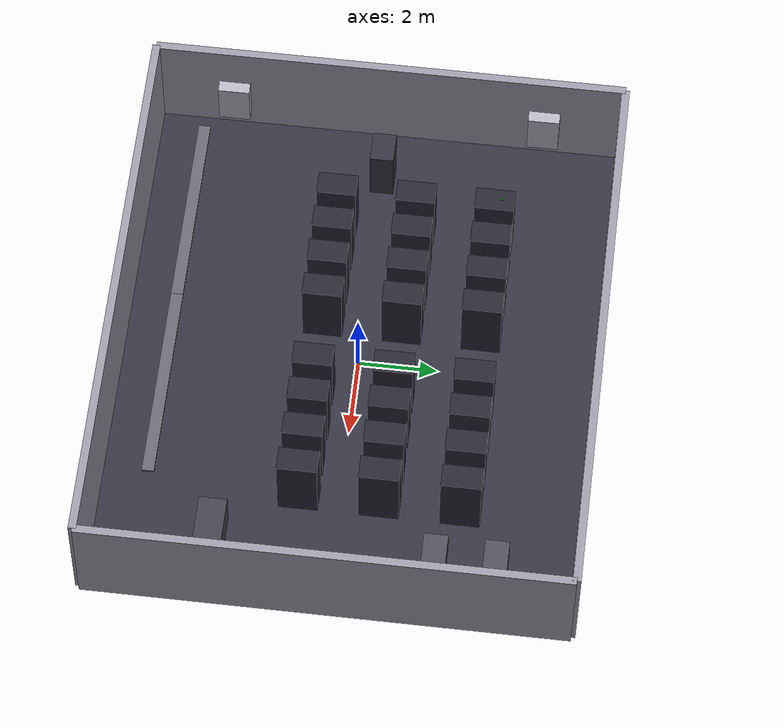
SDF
<?xml version="1.0" ?>
<sdf version="1.6">
  <world name="server_room">
    <!-- Physics settings -->
    <physics type="ode">
      <max_step_size>0.001</max_step_size>
      <real_time_factor>1.0</real_time_factor>
      <real_time_update_rate>1000</real_time_update_rate>
    </physics>

    <!-- Scene -->
    <scene>
      <ambient>0.3 0.3 0.35 1</ambient>
      <background>0.1 0.1 0.15 1</background>
      <shadows>true</shadows>
    </scene>

    <!-- Lighting -->
    <light type="directional" name="sun">
      <cast_shadows>true</cast_shadows>
      <pose>0 0 10 0 0 0</pose>
      <diffuse>0.6 0.6 0.6 1</diffuse>
      <specular>0.2 0.2 0.2 1</specular>
      <direction>-0.5 1 -0.5</direction>
    </light>

    <!-- Ceiling lights for server room -->
    <light type="point" name="ceiling_light_1">
      <pose>-3 0 2.9 0 0 0</pose>
      <diffuse>1 1 1 1</diffuse>
      <attenuation>
        <range>12</range>
        <constant>0.6</constant>
        <linear>0.05</linear>
      </attenuation>
    </light>

    <light type="point" name="ceiling_light_2">
      <pose>3 0 2.9 0 0 0</pose>
      <diffuse>1 1 1 1</diffuse>
      <attenuation>
        <range>12</range>
        <constant>0.6</constant>
        <linear>0.05</linear>
      </attenuation>
    </light>

    <light type="point" name="ceiling_light_3">
      <pose>0 -4 2.9 0 0 0</pose>
      <diffuse>1 1 1 1</diffuse>
      <attenuation>
        <range>12</range>
        <constant>0.6</constant>
        <linear>0.05</linear>
      </attenuation>
    </light>

    <light type="point" name="ceiling_light_4">
      <pose>0 4 2.9 0 0 0</pose>
      <diffuse>1 1 1 1</diffuse>
      <attenuation>
        <range>12</range>
        <constant>0.6</constant>
        <linear>0.05</linear>
      </attenuation>
    </light>

    <!-- ==================== FLOOR ==================== -->
    <model name="floor">
      <static>true</static>
      <link name="floor_link">
        <pose>0 0 0 0 0 0</pose>
        <collision name="floor_collision">
          <geometry>
            <box>
              <size>14 12 0.1</size>
            </box>
          </geometry>
        </collision>
        <visual name="floor_visual">
          <geometry>
            <box>
              <size>14 12 0.1</size>
            </box>
          </geometry>
          <material>
            <ambient>0.2 0.2 0.25 1</ambient>
            <diffuse>0.2 0.2 0.25 1</diffuse>
          </material>
        </visual>
      </link>
    </model>

    <!-- ==================== CEILING ==================== -->

    <!-- ==================== WALLS ==================== -->
    <!-- North wall -->
    <model name="wall_north">
      <static>true</static>
      <link name="wall_link">
        <pose>0 6 1.5 0 0 0</pose>
        <collision name="wall_collision">
          <geometry>
            <box>
              <size>14 0.2 3</size>
            </box>
          </geometry>
        </collision>
        <visual name="wall_visual">
          <geometry>
            <box>
              <size>14 0.2 3</size>
            </box>
          </geometry>
          <material>
            <ambient>0.6 0.6 0.65 1</ambient>
            <diffuse>0.6 0.6 0.65 1</diffuse>
          </material>
        </visual>
      </link>
    </model>

    <!-- South wall -->
    <model name="wall_south">
      <static>true</static>
      <link name="wall_link">
        <pose>0 -6 1.5 0 0 0</pose>
        <collision name="wall_collision">
          <geometry>
            <box>
              <size>14 0.2 3</size>
            </box>
          </geometry>
        </collision>
        <visual name="wall_visual">
          <geometry>
            <box>
              <size>14 0.2 3</size>
            </box>
          </geometry>
          <material>
            <ambient>0.6 0.6 0.65 1</ambient>
            <diffuse>0.6 0.6 0.65 1</diffuse>
          </material>
        </visual>
      </link>
    </model>

    <!-- West wall -->
    <model name="wall_west">
      <static>true</static>
      <link name="wall_link">
        <pose>-7 0 1.5 0 0 0</pose>
        <collision name="wall_collision">
          <geometry>
            <box>
              <size>0.2 12 3</size>
            </box>
          </geometry>
        </collision>
        <visual name="wall_visual">
          <geometry>
            <box>
              <size>0.2 12 3</size>
            </box>
          </geometry>
          <material>
            <ambient>0.6 0.6 0.65 1</ambient>
            <diffuse>0.6 0.6 0.65 1</diffuse>
          </material>
        </visual>
      </link>
    </model>

    <!-- East wall -->
    <model name="wall_east">
      <static>true</static>
      <link name="wall_link">
        <pose>7 0 1.5 0 0 0</pose>
        <collision name="wall_collision">
          <geometry>
            <box>
              <size>0.2 12 3</size>
            </box>
          </geometry>
        </collision>
        <visual name="wall_visual">
          <geometry>
            <box>
              <size>0.2 12 3</size>
            </box>
          </geometry>
          <material>
            <ambient>0.6 0.6 0.65 1</ambient>
            <diffuse>0.6 0.6 0.65 1</diffuse>
          </material>
        </visual>
      </link>
    </model>

    <!-- ==================== SERVER CABINETS (机柜) ==================== -->
    <!-- Row 1 - 4 cabinets -->
    <!-- Server Cabinet 1 -->
    <model name="server_cabinet_1">
      <static>true</static>
      <pose>-4 3 1.0 0 0 0</pose>
      <link name="frame">
        <collision name="cabinet_collision">
          <geometry>
            <box>
              <size>0.6 1.0 2.0</size>
            </box>
          </geometry>
        </collision>
        <visual name="cabinet_visual">
          <geometry>
            <box>
              <size>0.6 1.0 2.0</size>
            </box>
          </geometry>
          <material>
            <ambient>0.15 0.15 0.2 1</ambient>
            <diffuse>0.15 0.15 0.2 1</diffuse>
          </material>
        </visual>
      </link>
      <!-- LED status lights -->
      <link name="led_panel_1">
        <pose>0.31 0.2 1.5 0 0 0</pose>
        <visual name="led_visual">
          <geometry>
            <box>
              <size>0.02 0.1 0.02</size>
            </box>
          </geometry>
          <material>
            <ambient>0 1 0 1</ambient>
            <diffuse>0 1 0 1</diffuse>
          </material>
        </visual>
      </link>
    </model>

    <!-- Server Cabinet 2 -->
    <model name="server_cabinet_2">
      <static>true</static>
      <pose>-3 3 1.0 0 0 0</pose>
      <link name="frame">
        <collision name="cabinet_collision">
          <geometry>
            <box>
              <size>0.6 1.0 2.0</size>
            </box>
          </geometry>
        </collision>
        <visual name="cabinet_visual">
          <geometry>
            <box>
              <size>0.6 1.0 2.0</size>
            </box>
          </geometry>
          <material>
            <ambient>0.15 0.15 0.2 1</ambient>
            <diffuse>0.15 0.15 0.2 1</diffuse>
          </material>
        </visual>
      </link>
    </model>

    <!-- Server Cabinet 3 -->
    <model name="server_cabinet_3">
      <static>true</static>
      <pose>-2 3 1.0 0 0 0</pose>
      <link name="frame">
        <collision name="cabinet_collision">
          <geometry>
            <box>
              <size>0.6 1.0 2.0</size>
            </box>
          </geometry>
        </collision>
        <visual name="cabinet_visual">
          <geometry>
            <box>
              <size>0.6 1.0 2.0</size>
            </box>
          </geometry>
          <material>
            <ambient>0.15 0.15 0.2 1</ambient>
            <diffuse>0.15 0.15 0.2 1</diffuse>
          </material>
        </visual>
      </link>
    </model>

    <!-- Server Cabinet 4 -->
    <model name="server_cabinet_4">
      <static>true</static>
      <pose>-1 3 1.0 0 0 0</pose>
      <link name="frame">
        <collision name="cabinet_collision">
          <geometry>
            <box>
              <size>0.6 1.0 2.0</size>
            </box>
          </geometry>
        </collision>
        <visual name="cabinet_visual">
          <geometry>
            <box>
              <size>0.6 1.0 2.0</size>
            </box>
          </geometry>
          <material>
            <ambient>0.15 0.15 0.2 1</ambient>
            <diffuse>0.15 0.15 0.2 1</diffuse>
          </material>
        </visual>
      </link>
    </model>

    <!-- Row 2 - 4 cabinets -->
    <!-- Server Cabinet 5 -->
    <model name="server_cabinet_5">
      <static>true</static>
      <pose>-4 1 1.0 0 0 0</pose>
      <link name="frame">
        <collision name="cabinet_collision">
          <geometry>
            <box>
              <size>0.6 1.0 2.0</size>
            </box>
          </geometry>
        </collision>
        <visual name="cabinet_visual">
          <geometry>
            <box>
              <size>0.6 1.0 2.0</size>
            </box>
          </geometry>
          <material>
            <ambient>0.15 0.15 0.2 1</ambient>
            <diffuse>0.15 0.15 0.2 1</diffuse>
          </material>
        </visual>
      </link>
    </model>

    <!-- Server Cabinet 6 -->
    <model name="server_cabinet_6">
      <static>true</static>
      <pose>-3 1 1.0 0 0 0</pose>
      <link name="frame">
        <collision name="cabinet_collision">
          <geometry>
            <box>
              <size>0.6 1.0 2.0</size>
            </box>
          </geometry>
        </collision>
        <visual name="cabinet_visual">
          <geometry>
            <box>
              <size>0.6 1.0 2.0</size>
            </box>
          </geometry>
          <material>
            <ambient>0.15 0.15 0.2 1</ambient>
            <diffuse>0.15 0.15 0.2 1</diffuse>
          </material>
        </visual>
      </link>
    </model>

    <!-- Server Cabinet 7 -->
    <model name="server_cabinet_7">
      <static>true</static>
      <pose>-2 1 1.0 0 0 0</pose>
      <link name="frame">
        <collision name="cabinet_collision">
          <geometry>
            <box>
              <size>0.6 1.0 2.0</size>
            </box>
          </geometry>
        </collision>
        <visual name="cabinet_visual">
          <geometry>
            <box>
              <size>0.6 1.0 2.0</size>
            </box>
          </geometry>
          <material>
            <ambient>0.15 0.15 0.2 1</ambient>
            <diffuse>0.15 0.15 0.2 1</diffuse>
          </material>
        </visual>
      </link>
    </model>

    <!-- Server Cabinet 8 -->
    <model name="server_cabinet_8">
      <static>true</static>
      <pose>-1 1 1.0 0 0 0</pose>
      <link name="frame">
        <collision name="cabinet_collision">
          <geometry>
            <box>
              <size>0.6 1.0 2.0</size>
            </box>
          </geometry>
        </collision>
        <visual name="cabinet_visual">
          <geometry>
            <box>
              <size>0.6 1.0 2.0</size>
            </box>
          </geometry>
          <material>
            <ambient>0.15 0.15 0.2 1</ambient>
            <diffuse>0.15 0.15 0.2 1</diffuse>
          </material>
        </visual>
      </link>
    </model>

    <!-- Row 3 - 4 cabinets -->
    <!-- Server Cabinet 9 -->
    <model name="server_cabinet_9">
      <static>true</static>
      <pose>-4 -1 1.0 0 0 0</pose>
      <link name="frame">
        <collision name="cabinet_collision">
          <geometry>
            <box>
              <size>0.6 1.0 2.0</size>
            </box>
          </geometry>
        </collision>
        <visual name="cabinet_visual">
          <geometry>
            <box>
              <size>0.6 1.0 2.0</size>
            </box>
          </geometry>
          <material>
            <ambient>0.15 0.15 0.2 1</ambient>
            <diffuse>0.15 0.15 0.2 1</diffuse>
          </material>
        </visual>
      </link>
    </model>

    <!-- Server Cabinet 10 -->
    <model name="server_cabinet_10">
      <static>true</static>
      <pose>-3 -1 1.0 0 0 0</pose>
      <link name="frame">
        <collision name="cabinet_collision">
          <geometry>
            <box>
              <size>0.6 1.0 2.0</size>
            </box>
          </geometry>
        </collision>
        <visual name="cabinet_visual">
          <geometry>
            <box>
              <size>0.6 1.0 2.0</size>
            </box>
          </geometry>
          <material>
            <ambient>0.15 0.15 0.2 1</ambient>
            <diffuse>0.15 0.15 0.2 1</diffuse>
          </material>
        </visual>
      </link>
    </model>

    <!-- Server Cabinet 11 -->
    <model name="server_cabinet_11">
      <static>true</static>
      <pose>-2 -1 1.0 0 0 0</pose>
      <link name="frame">
        <collision name="cabinet_collision">
          <geometry>
            <box>
              <size>0.6 1.0 2.0</size>
            </box>
          </geometry>
        </collision>
        <visual name="cabinet_visual">
          <geometry>
            <box>
              <size>0.6 1.0 2.0</size>
            </box>
          </geometry>
          <material>
            <ambient>0.15 0.15 0.2 1</ambient>
            <diffuse>0.15 0.15 0.2 1</diffuse>
          </material>
        </visual>
      </link>
    </model>

    <!-- Server Cabinet 12 -->
    <model name="server_cabinet_12">
      <static>true</static>
      <pose>-1 -1 1.0 0 0 0</pose>
      <link name="frame">
        <collision name="cabinet_collision">
          <geometry>
            <box>
              <size>0.6 1.0 2.0</size>
            </box>
          </geometry>
        </collision>
        <visual name="cabinet_visual">
          <geometry>
            <box>
              <size>0.6 1.0 2.0</size>
            </box>
          </geometry>
          <material>
            <ambient>0.15 0.15 0.2 1</ambient>
            <diffuse>0.15 0.15 0.2 1</diffuse>
          </material>
        </visual>
      </link>
    </model>

    <!-- Row 4 - 4 cabinets -->
    <!-- Server Cabinet 13 -->
    <model name="server_cabinet_13">
      <static>true</static>
      <pose>1 3 1.0 0 0 0</pose>
      <link name="frame">
        <collision name="cabinet_collision">
          <geometry>
            <box>
              <size>0.6 1.0 2.0</size>
            </box>
          </geometry>
        </collision>
        <visual name="cabinet_visual">
          <geometry>
            <box>
              <size>0.6 1.0 2.0</size>
            </box>
          </geometry>
          <material>
            <ambient>0.15 0.15 0.2 1</ambient>
            <diffuse>0.15 0.15 0.2 1</diffuse>
          </material>
        </visual>
      </link>
    </model>

    <!-- Server Cabinet 14 -->
    <model name="server_cabinet_14">
      <static>true</static>
      <pose>2 3 1.0 0 0 0</pose>
      <link name="frame">
        <collision name="cabinet_collision">
          <geometry>
            <box>
              <size>0.6 1.0 2.0</size>
            </box>
          </geometry>
        </collision>
        <visual name="cabinet_visual">
          <geometry>
            <box>
              <size>0.6 1.0 2.0</size>
            </box>
          </geometry>
          <material>
            <ambient>0.15 0.15 0.2 1</ambient>
            <diffuse>0.15 0.15 0.2 1</diffuse>
          </material>
        </visual>
      </link>
    </model>

    <!-- Server Cabinet 15 -->
    <model name="server_cabinet_15">
      <static>true</static>
      <pose>3 3 1.0 0 0 0</pose>
      <link name="frame">
        <collision name="cabinet_collision">
          <geometry>
            <box>
              <size>0.6 1.0 2.0</size>
            </box>
          </geometry>
        </collision>
        <visual name="cabinet_visual">
          <geometry>
            <box>
              <size>0.6 1.0 2.0</size>
            </box>
          </geometry>
          <material>
            <ambient>0.15 0.15 0.2 1</ambient>
            <diffuse>0.15 0.15 0.2 1</diffuse>
          </material>
        </visual>
      </link>
    </model>

    <!-- Server Cabinet 16 -->
    <model name="server_cabinet_16">
      <static>true</static>
      <pose>4 3 1.0 0 0 0</pose>
      <link name="frame">
        <collision name="cabinet_collision">
          <geometry>
            <box>
              <size>0.6 1.0 2.0</size>
            </box>
          </geometry>
        </collision>
        <visual name="cabinet_visual">
          <geometry>
            <box>
              <size>0.6 1.0 2.0</size>
            </box>
          </geometry>
          <material>
            <ambient>0.15 0.15 0.2 1</ambient>
            <diffuse>0.15 0.15 0.2 1</diffuse>
          </material>
        </visual>
      </link>
    </model>

    <!-- Row 5 - 4 cabinets -->
    <!-- Server Cabinet 17 -->
    <model name="server_cabinet_17">
      <static>true</static>
      <pose>1 1 1.0 0 0 0</pose>
      <link name="frame">
        <collision name="cabinet_collision">
          <geometry>
            <box>
              <size>0.6 1.0 2.0</size>
            </box>
          </geometry>
        </collision>
        <visual name="cabinet_visual">
          <geometry>
            <box>
              <size>0.6 1.0 2.0</size>
            </box>
          </geometry>
          <material>
            <ambient>0.15 0.15 0.2 1</ambient>
            <diffuse>0.15 0.15 0.2 1</diffuse>
          </material>
        </visual>
      </link>
    </model>

    <!-- Server Cabinet 18 -->
    <model name="server_cabinet_18">
      <static>true</static>
      <pose>2 1 1.0 0 0 0</pose>
      <link name="frame">
        <collision name="cabinet_collision">
          <geometry>
            <box>
              <size>0.6 1.0 2.0</size>
            </box>
          </geometry>
        </collision>
        <visual name="cabinet_visual">
          <geometry>
            <box>
              <size>0.6 1.0 2.0</size>
            </box>
          </geometry>
          <material>
            <ambient>0.15 0.15 0.2 1</ambient>
            <diffuse>0.15 0.15 0.2 1</diffuse>
          </material>
        </visual>
      </link>
    </model>

    <!-- Server Cabinet 19 -->
    <model name="server_cabinet_19">
      <static>true</static>
      <pose>3 1 1.0 0 0 0</pose>
      <link name="frame">
        <collision name="cabinet_collision">
          <geometry>
            <box>
              <size>0.6 1.0 2.0</size>
            </box>
          </geometry>
        </collision>
        <visual name="cabinet_visual">
          <geometry>
            <box>
              <size>0.6 1.0 2.0</size>
            </box>
          </geometry>
          <material>
            <ambient>0.15 0.15 0.2 1</ambient>
            <diffuse>0.15 0.15 0.2 1</diffuse>
          </material>
        </visual>
      </link>
    </model>

    <!-- Server Cabinet 20 -->
    <model name="server_cabinet_20">
      <static>true</static>
      <pose>4 1 1.0 0 0 0</pose>
      <link name="frame">
        <collision name="cabinet_collision">
          <geometry>
            <box>
              <size>0.6 1.0 2.0</size>
            </box>
          </geometry>
        </collision>
        <visual name="cabinet_visual">
          <geometry>
            <box>
              <size>0.6 1.0 2.0</size>
            </box>
          </geometry>
          <material>
            <ambient>0.15 0.15 0.2 1</ambient>
            <diffuse>0.15 0.15 0.2 1</diffuse>
          </material>
        </visual>
      </link>
    </model>

    <!-- Row 6 - 4 cabinets -->
    <!-- Server Cabinet 21 -->
    <model name="server_cabinet_21">
      <static>true</static>
      <pose>1 -1 1.0 0 0 0</pose>
      <link name="frame">
        <collision name="cabinet_collision">
          <geometry>
            <box>
              <size>0.6 1.0 2.0</size>
            </box>
          </geometry>
        </collision>
        <visual name="cabinet_visual">
          <geometry>
            <box>
              <size>0.6 1.0 2.0</size>
            </box>
          </geometry>
          <material>
            <ambient>0.15 0.15 0.2 1</ambient>
            <diffuse>0.15 0.15 0.2 1</diffuse>
          </material>
        </visual>
      </link>
    </model>

    <!-- Server Cabinet 22 -->
    <model name="server_cabinet_22">
      <static>true</static>
      <pose>2 -1 1.0 0 0 0</pose>
      <link name="frame">
        <collision name="cabinet_collision">
          <geometry>
            <box>
              <size>0.6 1.0 2.0</size>
            </box>
          </geometry>
        </collision>
        <visual name="cabinet_visual">
          <geometry>
            <box>
              <size>0.6 1.0 2.0</size>
            </box>
          </geometry>
          <material>
            <ambient>0.15 0.15 0.2 1</ambient>
            <diffuse>0.15 0.15 0.2 1</diffuse>
          </material>
        </visual>
      </link>
    </model>

    <!-- Server Cabinet 23 -->
    <model name="server_cabinet_23">
      <static>true</static>
      <pose>3 -1 1.0 0 0 0</pose>
      <link name="frame">
        <collision name="cabinet_collision">
          <geometry>
            <box>
              <size>0.6 1.0 2.0</size>
            </box>
          </geometry>
        </collision>
        <visual name="cabinet_visual">
          <geometry>
            <box>
              <size>0.6 1.0 2.0</size>
            </box>
          </geometry>
          <material>
            <ambient>0.15 0.15 0.2 1</ambient>
            <diffuse>0.15 0.15 0.2 1</diffuse>
          </material>
        </visual>
      </link>
    </model>

    <!-- Server Cabinet 24 -->
    <model name="server_cabinet_24">
      <static>true</static>
      <pose>4 -1 1.0 0 0 0</pose>
      <link name="frame">
        <collision name="cabinet_collision">
          <geometry>
            <box>
              <size>0.6 1.0 2.0</size>
            </box>
          </geometry>
        </collision>
        <visual name="cabinet_visual">
          <geometry>
            <box>
              <size>0.6 1.0 2.0</size>
            </box>
          </geometry>
          <material>
            <ambient>0.15 0.15 0.2 1</ambient>
            <diffuse>0.15 0.15 0.2 1</diffuse>
          </material>
        </visual>
      </link>
    </model>

    <!-- ==================== SERVER ROOM EQUIPMENT ==================== -->
    <!-- Network Rack / Patch Panel -->
    <model name="network_rack">
      <static>true</static>
      <pose>-5.5 0 0.8 0 0 0</pose>
      <link name="frame">
        <collision name="rack_collision">
          <geometry>
            <box>
              <size>0.8 0.6 1.6</size>
            </box>
          </geometry>
        </collision>
        <visual name="rack_visual">
          <geometry>
            <box>
              <size>0.8 0.6 1.6</size>
            </box>
          </geometry>
          <material>
            <ambient>0.2 0.2 0.25 1</ambient>
            <diffuse>0.2 0.2 0.25 1</diffuse>
          </material>
        </visual>
      </link>
    </model>

    <!-- UPS (Uninterruptible Power Supply) -->
    <model name="ups_1">
      <static>true</static>
      <pose>5.5 4 0.4 0 0 0</pose>
      <link name="frame">
        <collision name="ups_collision">
          <geometry>
            <box>
              <size>1.0 0.6 0.8</size>
            </box>
          </geometry>
        </collision>
        <visual name="ups_visual">
          <geometry>
            <box>
              <size>1.0 0.6 0.8</size>
            </box>
          </geometry>
          <material>
            <ambient>0.3 0.3 0.35 1</ambient>
            <diffuse>0.3 0.3 0.35 1</diffuse>
          </material>
        </visual>
      </link>
    </model>

    <model name="ups_2">
      <static>true</static>
      <pose>5.5 2.5 0.4 0 0 0</pose>
      <link name="frame">
        <collision name="ups_collision">
          <geometry>
            <box>
              <size>1.0 0.6 0.8</size>
            </box>
          </geometry>
        </collision>
        <visual name="ups_visual">
          <geometry>
            <box>
              <size>1.0 0.6 0.8</size>
            </box>
          </geometry>
          <material>
            <ambient>0.3 0.3 0.35 1</ambient>
            <diffuse>0.3 0.3 0.35 1</diffuse>
          </material>
        </visual>
      </link>
    </model>

    <!-- Server Room Desk / Console -->
    <model name="console_desk">
      <static>true</static>
      <pose>5.5 -3 0.5 0 0 0</pose>
      <link name="frame">
        <collision name="desk_collision">
          <geometry>
            <box>
              <size>1.5 0.7 1.0</size>
            </box>
          </geometry>
        </collision>
        <visual name="desk_visual">
          <geometry>
            <box>
              <size>1.5 0.7 1.0</size>
            </box>
          </geometry>
          <material>
            <ambient>0.25 0.25 0.3 1</ambient>
            <diffuse>0.25 0.25 0.3 1</diffuse>
          </material>
        </visual>
      </link>
    </model>

    <!-- Air Conditioning Unit -->
    <model name="ac_unit_1">
      <static>true</static>
      <pose>-6.8 4 1.2 0 0 0</pose>
      <link name="frame">
        <collision name="ac_collision">
          <geometry>
            <box>
              <size>0.4 0.8 1.2</size>
            </box>
          </geometry>
        </collision>
        <visual name="ac_visual">
          <geometry>
            <box>
              <size>0.4 0.8 1.2</size>
            </box>
          </geometry>
          <material>
            <ambient>0.7 0.7 0.75 1</ambient>
            <diffuse>0.7 0.7 0.75 1</diffuse>
          </material>
        </visual>
      </link>
    </model>

    <model name="ac_unit_2">
      <static>true</static>
      <pose>-6.8 -4 1.2 0 0 0</pose>
      <link name="frame">
        <collision name="ac_collision">
          <geometry>
            <box>
              <size>0.4 0.8 1.2</size>
            </box>
          </geometry>
        </collision>
        <visual name="ac_visual">
          <geometry>
            <box>
              <size>0.4 0.8 1.2</size>
            </box>
          </geometry>
          <material>
            <ambient>0.7 0.7 0.75 1</ambient>
            <diffuse>0.7 0.7 0.75 1</diffuse>
          </material>
        </visual>
      </link>
    </model>

    <!-- Cable Tray / Raised Floor Section -->
    <model name="cable_tray_1">
      <static>true</static>
      <pose>-2.5 -4.5 2.5 0 0 0</pose>
      <link name="tray">
        <collision name="tray_collision">
          <geometry>
            <box>
              <size>5 0.3 0.05</size>
            </box>
          </geometry>
        </collision>
        <visual name="tray_visual">
          <geometry>
            <box>
              <size>5 0.3 0.05</size>
            </box>
          </geometry>
          <material>
            <ambient>0.4 0.4 0.45 1</ambient>
            <diffuse>0.4 0.4 0.45 1</diffuse>
          </material>
        </visual>
      </link>
    </model>

    <model name="cable_tray_2">
      <static>true</static>
      <pose>2.5 -4.5 2.5 0 0 0</pose>
      <link name="tray">
        <collision name="tray_collision">
          <geometry>
            <box>
              <size>5 0.3 0.05</size>
            </box>
          </geometry>
        </collision>
        <visual name="tray_visual">
          <geometry>
            <box>
              <size>5 0.3 0.05</size>
            </box>
          </geometry>
          <material>
            <ambient>0.4 0.4 0.45 1</ambient>
            <diffuse>0.4 0.4 0.45 1</diffuse>
          </material>
        </visual>
      </link>
    </model>

  </world>
</sdf>
